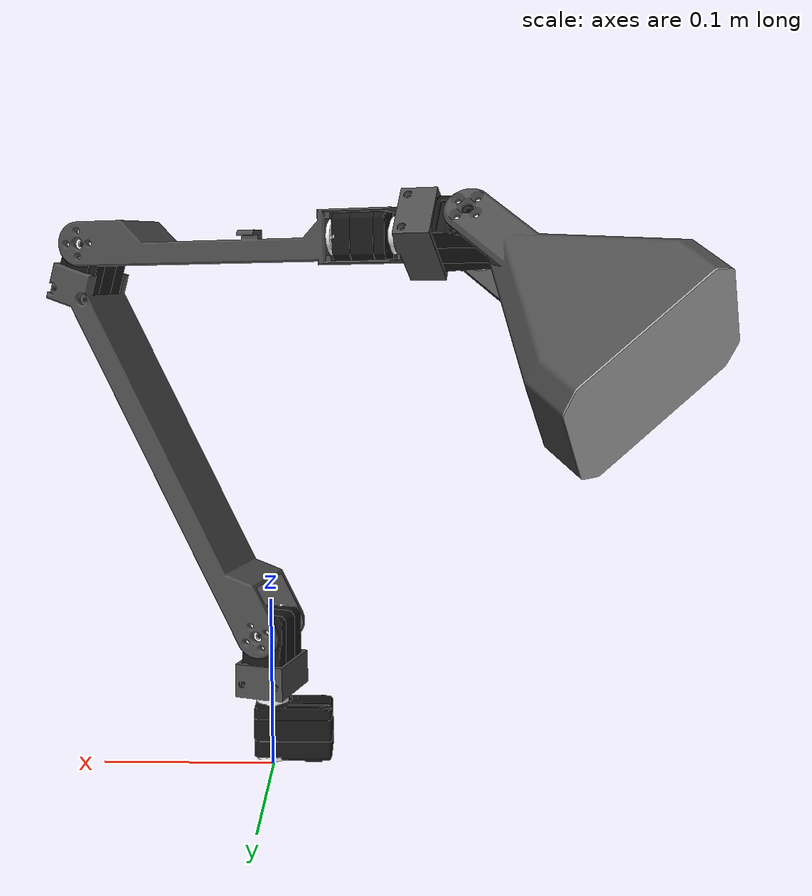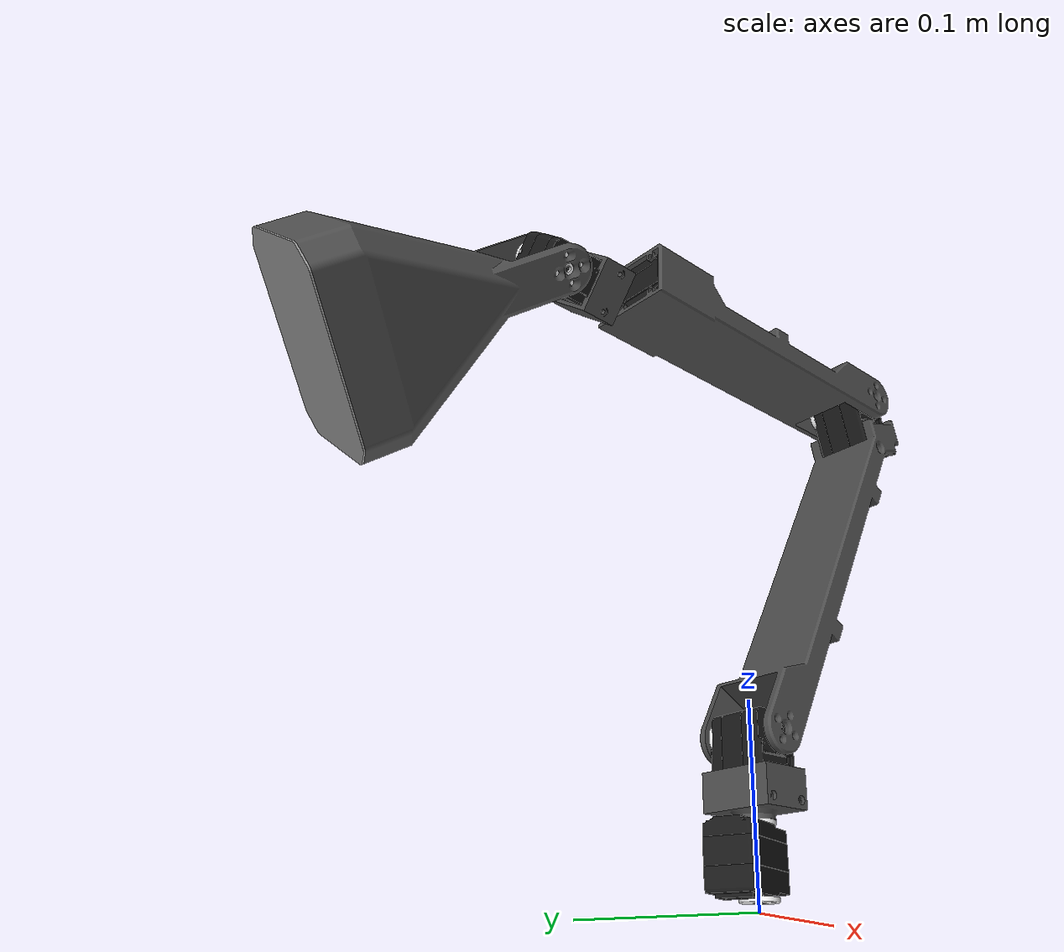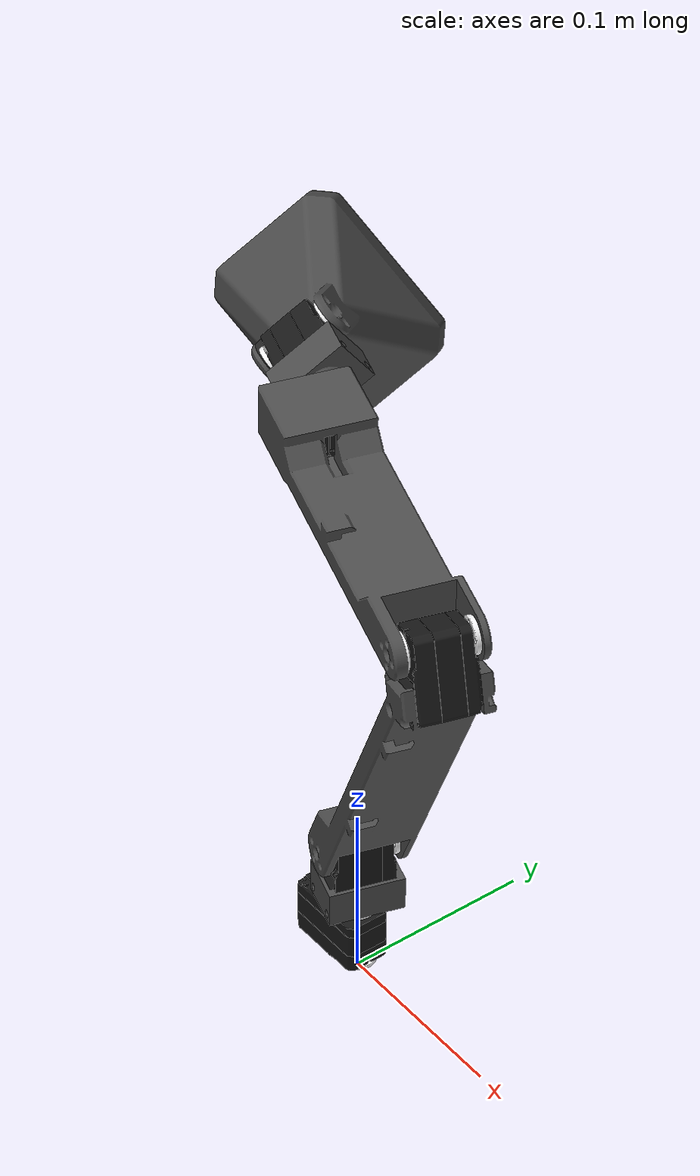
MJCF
<?xml version='1.0' encoding='utf-8'?>
<mujoco model="simulation">
  <compiler angle="radian" meshdir="assets" autolimits="true" />
  <default>
    <default class="simulation">
      <joint frictionloss="0.1" armature="0.005" />
      <position kp="50" dampratio="1" />
      <default class="visual">
        <geom type="mesh" contype="0" conaffinity="0" group="2" />
      </default>
      <default class="collision">
        <geom group="3" />
      </default>
    </default>
  </default>
  <sensor>
    <accelerometer name="accel_sensor" site="imu_site" />
    <gyro name="gyro_sensor" site="imu_site" />
  </sensor>
  <default>
    <default class="sts3215">
      <geom contype="0" conaffinity="0" />
      <joint damping="0.60" frictionloss="0.052" armature="0.028" />
      <position kp="17.8" kv="0.0" forcerange="-3.35 3.35" />
    </default>
    <default class="backlash">
      <joint damping="0.01" frictionloss="0" armature="0.01" limited="true" range="-0.008726646259971648 0.008726646259971648" />
    </default>
  </default>
  <worldbody>
    <body name="lamparm__base_elbow" pos="0 0 0" quat="1 0 0 0" childclass="simulation">
      <freejoint name="lamparm__base_elbow_freejoint" />
      <inertial pos="0.0729066 -0.0229022 0.217607" mass="0.234138" fullinertia="0.0010919 0.00129476 0.000320305 7.35843e-05 -0.000504692 0.000161616" />
      <geom type="mesh" class="visual" pos="0.0683802 0.000449515 0.192601" quat="0.149185 0.238014 -0.0370254 0.959021" mesh="lamparm__base_elbow" material="lamparm__base_elbow_material" />
      <geom type="mesh" class="collision" pos="0.0683802 0.000449515 0.192601" quat="0.149185 0.238014 -0.0370254 0.959021" mesh="lamparm__base_elbow" material="lamparm__base_elbow_material" />
      <geom type="mesh" class="visual" pos="0.0947995 -0.0378086 0.310793" quat="0.794936 0.0912975 0.586898 -0.12366" mesh="金属舵盘_驱动__v2" material="金属舵盘_驱动__v2_material" />
      <geom type="mesh" class="collision" pos="0.0947995 -0.0378086 0.310793" quat="0.794936 0.0912975 0.586898 -0.12366" mesh="金属舵盘_驱动__v2" material="金属舵盘_驱动__v2_material" />
      <geom type="mesh" class="visual" pos="0.090674 -0.0701329 0.29168" quat="0.12366 0.586898 -0.0912975 0.794936" mesh="金属舵盘_从动__v2" material="金属舵盘_从动__v2_material" />
      <geom type="mesh" class="collision" pos="0.090674 -0.0701329 0.29168" quat="0.12366 0.586898 -0.0912975 0.794936" mesh="金属舵盘_从动__v2" material="金属舵盘_从动__v2_material" />
      <geom type="mesh" class="visual" pos="0.110043 -0.0244059 0.276867" quat="0.794936 0.0912975 0.586898 -0.12366" mesh="pcb_chazuo_92" material="pcb_chazuo_92_material" />
      <geom type="mesh" class="collision" pos="0.110043 -0.0244059 0.276867" quat="0.794936 0.0912975 0.586898 -0.12366" mesh="pcb_chazuo_92" material="pcb_chazuo_92_material" />
      <geom type="mesh" class="visual" pos="0.110043 -0.0244059 0.276867" quat="0.794936 0.0912975 0.586898 -0.12366" mesh="xg_ziji_16" material="xg_ziji_16_material" />
      <geom type="mesh" class="collision" pos="0.110043 -0.0244059 0.276867" quat="0.794936 0.0912975 0.586898 -0.12366" mesh="xg_ziji_16" material="xg_ziji_16_material" />
      <geom type="mesh" class="visual" pos="0.101068 -0.0278417 0.301237" quat="0.497548 0.626662 0.327559 -0.50244" mesh="ge_27" material="ge_27_material" />
      <geom type="mesh" class="collision" pos="0.101068 -0.0278417 0.301237" quat="0.497548 0.626662 0.327559 -0.50244" mesh="ge_27" material="ge_27_material" />
      <geom type="mesh" class="visual" pos="0.110043 -0.0244059 0.276867" quat="0.794936 0.0912975 0.586898 -0.12366" mesh="sg_ziji_15" material="sg_ziji_15_material" />
      <geom type="mesh" class="collision" pos="0.110043 -0.0244059 0.276867" quat="0.794936 0.0912975 0.586898 -0.12366" mesh="sg_ziji_15" material="sg_ziji_15_material" />
      <geom type="mesh" class="visual" pos="0.110043 -0.0244059 0.276867" quat="0.794936 0.0912975 0.586898 -0.12366" mesh="zk_122" material="zk_122_material" />
      <geom type="mesh" class="collision" pos="0.110043 -0.0244059 0.276867" quat="0.794936 0.0912975 0.586898 -0.12366" mesh="zk_122" material="zk_122_material" />
      <geom type="mesh" class="visual" pos="0.101964 -0.0458133 0.276499" quat="0.147105 0.151998 0.977104 -0.0228836" mesh="motor_1723_3" material="motor_1723_3_material" />
      <geom type="mesh" class="collision" pos="0.101964 -0.0458133 0.276499" quat="0.147105 0.151998 0.977104 -0.0228836" mesh="motor_1723_3" material="motor_1723_3_material" />
      <body name="lamparm__wrist_head" pos="0.00583234 0.0182927 0.08291" quat="0.570913 -0.417203 0.570913 0.417203">
        <joint axis="0 0 1" name="2" type="hinge" range="-1.0842575396713956 2.0573351139183975" class="sts3215" />
        <inertial pos="0.0193636 0.000541554 -0.0196637" mass="0.0953804" fullinertia="1.16713e-05 2.19256e-05 1.7794e-05 -3.19269e-07 9.361e-07 6.98105e-08" />
        <geom type="mesh" class="visual" pos="0.04111 7.30741e-16 -0.0192" quat="0.5 -0.5 -0.5 0.5" mesh="lamparm__wrist_head" material="lamparm__wrist_head_material" />
        <geom type="mesh" class="collision" pos="0.04111 7.30741e-16 -0.0192" quat="0.5 -0.5 -0.5 0.5" mesh="lamparm__wrist_head" material="lamparm__wrist_head_material" />
        <geom type="mesh" class="visual" pos="-0.01 1.67203e-18 -0.027" quat="0.707107 0.707107 0 -5.47763e-32" mesh="金属舵盘_驱动__v2" material="金属舵盘_驱动__v2_material" />
        <geom type="mesh" class="collision" pos="-0.01 1.67203e-18 -0.027" quat="0.707107 0.707107 0 -5.47763e-32" mesh="金属舵盘_驱动__v2" material="金属舵盘_驱动__v2_material" />
        <geom type="mesh" class="visual" pos="0.01 -7.90727e-16 -0.05905" quat="9.30303e-15 -3.53884e-15 0.707107 -0.707107" mesh="金属舵盘_从动__v2" material="金属舵盘_从动__v2_material" />
        <geom type="mesh" class="collision" pos="0.01 -7.90727e-16 -0.05905" quat="9.30303e-15 -3.53884e-15 0.707107 -0.707107" mesh="金属舵盘_从动__v2" material="金属舵盘_从动__v2_material" />
        <geom type="mesh" class="visual" pos="0.0255 6.87024e-16 -0.0096" quat="0.707107 0.707107 0 -5.47763e-32" mesh="pcb_chazuo_92" material="pcb_chazuo_92_material" />
        <geom type="mesh" class="collision" pos="0.0255 6.87024e-16 -0.0096" quat="0.707107 0.707107 0 -5.47763e-32" mesh="pcb_chazuo_92" material="pcb_chazuo_92_material" />
        <geom type="mesh" class="visual" pos="0.0255 6.87024e-16 -0.0096" quat="0.707107 0.707107 0 -5.47763e-32" mesh="xg_ziji_16" material="xg_ziji_16_material" />
        <geom type="mesh" class="collision" pos="0.0255 6.87024e-16 -0.0096" quat="0.707107 0.707107 0 -5.47763e-32" mesh="xg_ziji_16" material="xg_ziji_16_material" />
        <geom type="mesh" class="visual" pos="-1.80411e-16 3.21139e-16 -0.0156" quat="1.6825e-14 1 2.44606e-15 3.23662e-16" mesh="ge_27" material="ge_27_material" />
        <geom type="mesh" class="collision" pos="-1.80411e-16 3.21139e-16 -0.0156" quat="1.6825e-14 1 2.44606e-15 3.23662e-16" mesh="ge_27" material="ge_27_material" />
        <geom type="mesh" class="visual" pos="0.0255 6.87024e-16 -0.0096" quat="0.707107 0.707107 0 -5.47763e-32" mesh="sg_ziji_15" material="sg_ziji_15_material" />
        <geom type="mesh" class="collision" pos="0.0255 6.87024e-16 -0.0096" quat="0.707107 0.707107 0 -5.47763e-32" mesh="sg_ziji_15" material="sg_ziji_15_material" />
        <geom type="mesh" class="visual" pos="0.0255 6.87024e-16 -0.0096" quat="0.707107 0.707107 0 -5.47763e-32" mesh="zk_122" material="zk_122_material" />
        <geom type="mesh" class="collision" pos="0.0255 6.87024e-16 -0.0096" quat="0.707107 0.707107 0 -5.47763e-32" mesh="zk_122" material="zk_122_material" />
        <geom type="mesh" class="visual" pos="0.0255 0.00125 -0.03245" quat="0.5 0.5 0.5 0.5" mesh="motor_1723_3" material="motor_1723_3_material" />
        <geom type="mesh" class="collision" pos="0.0255 0.00125 -0.03245" quat="0.5 0.5 0.5 0.5" mesh="motor_1723_3" material="motor_1723_3_material" />
        <body name="scs215_v5" pos="0.04111 7.30741e-16 -0.0192" quat="0.5 -0.5 -0.5 0.5">
          <joint axis="0 0 1" name="1" type="hinge" range="-5.021033992714066 1.2621513144655205" class="sts3215" />
          <inertial pos="0.00584437 0.00206639 -0.0244202" mass="0.41735" fullinertia="0.00100304 0.00122902 0.00205034 -8.49257e-05 -8.64397e-06 -3.34823e-06" />
          <geom type="mesh" class="visual" pos="-0.00952746 -0.00303768 -0.027" quat="0.698703 0.698703 0.10869 0.10869" mesh="金属舵盘_驱动__v2" material="金属舵盘_驱动__v2_material" />
          <geom type="mesh" class="collision" pos="-0.00952746 -0.00303768 -0.027" quat="0.698703 0.698703 0.10869 0.10869" mesh="金属舵盘_驱动__v2" material="金属舵盘_驱动__v2_material" />
          <geom type="mesh" class="visual" pos="0.00952746 0.00303768 -0.05905" quat="0.10869 -0.10869 0.698703 -0.698703" mesh="金属舵盘_从动__v2" material="金属舵盘_从动__v2_material" />
          <geom type="mesh" class="collision" pos="0.00952746 0.00303768 -0.05905" quat="0.10869 -0.10869 0.698703 -0.698703" mesh="金属舵盘_从动__v2" material="金属舵盘_从动__v2_material" />
          <geom type="mesh" class="visual" pos="0.024295 0.00774608 -0.0096" quat="0.698703 0.698703 0.10869 0.10869" mesh="pcb_chazuo_92" material="pcb_chazuo_92_material" />
          <geom type="mesh" class="collision" pos="0.024295 0.00774608 -0.0096" quat="0.698703 0.698703 0.10869 0.10869" mesh="pcb_chazuo_92" material="pcb_chazuo_92_material" />
          <geom type="mesh" class="visual" pos="0.024295 0.00774608 -0.0096" quat="0.698703 0.698703 0.10869 0.10869" mesh="xg_ziji_16" material="xg_ziji_16_material" />
          <geom type="mesh" class="collision" pos="0.024295 0.00774608 -0.0096" quat="0.698703 0.698703 0.10869 0.10869" mesh="xg_ziji_16" material="xg_ziji_16_material" />
          <geom type="mesh" class="visual" pos="-1.19702e-17 3.78772e-17 -0.0156" quat="1.59242e-15 -0.988116 -0.153711 1.25707e-15" mesh="ge_27" material="ge_27_material" />
          <geom type="mesh" class="collision" pos="-1.19702e-17 3.78772e-17 -0.0156" quat="1.59242e-15 -0.988116 -0.153711 1.25707e-15" mesh="ge_27" material="ge_27_material" />
          <geom type="mesh" class="visual" pos="0.024295 0.00774608 -0.0096" quat="0.698703 0.698703 0.10869 0.10869" mesh="sg_ziji_15" material="sg_ziji_15_material" />
          <geom type="mesh" class="collision" pos="0.024295 0.00774608 -0.0096" quat="0.698703 0.698703 0.10869 0.10869" mesh="sg_ziji_15" material="sg_ziji_15_material" />
          <geom type="mesh" class="visual" pos="0.024295 0.00774608 -0.0096" quat="0.698703 0.698703 0.10869 0.10869" mesh="zk_122" material="zk_122_material" />
          <geom type="mesh" class="collision" pos="0.024295 0.00774608 -0.0096" quat="0.698703 0.698703 0.10869 0.10869" mesh="zk_122" material="zk_122_material" />
          <geom type="mesh" class="visual" pos="0.0239153 0.00893702 -0.03245" quat="0.417203 0.417203 0.570913 0.570913" mesh="motor_1723_3" material="motor_1723_3_material" />
          <geom type="mesh" class="collision" pos="0.0239153 0.00893702 -0.03245" quat="0.417203 0.417203 0.570913 0.570913" mesh="motor_1723_3" material="motor_1723_3_material" />
          <site group="3" name="imu_site" pos="-3.4944e-17 4.02192e-17 -0.0378" quat="1.81174e-15 -0.590014 -0.807393 -2.8812e-15" />
        </body>
      </body>
      <body name="lamparm__elbow_wrist" pos="0.105806 -0.0129789 0.301237" quat="0.575614 0.423658 -0.566139 0.410693">
        <joint axis="0 0 1" name="3" type="hinge" range="-2.820024081304335 0.3215685722854582" class="sts3215" />
        <inertial pos="-0.00212937 0.119295 0.0220282" mass="0.206448" fullinertia="0.000632713 4.80236e-05 0.000602863 -1.84707e-05 -1.72868e-06 -1.49987e-05" />
        <geom type="mesh" class="visual" pos="-0.00618 0.08736 0.03925" quat="0.707107 -0.707107 0 -1.89876e-18" mesh="lamparm__elbow_wrist" material="lamparm__elbow_wrist_material" />
        <geom type="mesh" class="collision" pos="-0.00618 0.08736 0.03925" quat="0.707107 -0.707107 0 -1.89876e-18" mesh="lamparm__elbow_wrist" material="lamparm__elbow_wrist_material" />
        <geom type="mesh" class="visual" pos="2.60902e-15 0.158185 -0.003875" quat="0.707107 -0 -0.707107 -1.10011e-16" mesh="金属舵盘_驱动__v2" material="金属舵盘_驱动__v2_material" />
        <geom type="mesh" class="collision" pos="2.60902e-15 0.158185 -0.003875" quat="0.707107 -0 -0.707107 -1.10011e-16" mesh="金属舵盘_驱动__v2" material="金属舵盘_驱动__v2_material" />
        <geom type="mesh" class="visual" pos="3.4972e-15 0.126135 0.016125" quat="1.77931e-14 0.707107 2.09832e-14 -0.707107" mesh="金属舵盘_从动__v2" material="金属舵盘_从动__v2_material" />
        <geom type="mesh" class="collision" pos="3.4972e-15 0.126135 0.016125" quat="1.77931e-14 0.707107 2.09832e-14 -0.707107" mesh="金属舵盘_从动__v2" material="金属舵盘_从动__v2_material" />
        <geom type="mesh" class="visual" pos="5.55112e-17 0.175585 0.031625" quat="0.707107 -0 -0.707107 -1.10011e-16" mesh="pcb_chazuo_92" material="pcb_chazuo_92_material" />
        <geom type="mesh" class="collision" pos="5.55112e-17 0.175585 0.031625" quat="0.707107 -0 -0.707107 -1.10011e-16" mesh="pcb_chazuo_92" material="pcb_chazuo_92_material" />
        <geom type="mesh" class="visual" pos="5.55112e-17 0.175585 0.031625" quat="0.707107 -0 -0.707107 -1.10011e-16" mesh="xg_ziji_16" material="xg_ziji_16_material" />
        <geom type="mesh" class="collision" pos="5.55112e-17 0.175585 0.031625" quat="0.707107 -0 -0.707107 -1.10011e-16" mesh="xg_ziji_16" material="xg_ziji_16_material" />
        <geom type="mesh" class="visual" pos="3.88578e-16 0.169585 0.006125" quat="0.5 0.5 -0.5 0.5" mesh="ge_27" material="ge_27_material" />
        <geom type="mesh" class="collision" pos="3.88578e-16 0.169585 0.006125" quat="0.5 0.5 -0.5 0.5" mesh="ge_27" material="ge_27_material" />
        <geom type="mesh" class="visual" pos="5.55112e-17 0.175585 0.031625" quat="0.707107 -0 -0.707107 -1.10011e-16" mesh="sg_ziji_15" material="sg_ziji_15_material" />
        <geom type="mesh" class="collision" pos="5.55112e-17 0.175585 0.031625" quat="0.707107 -0 -0.707107 -1.10011e-16" mesh="sg_ziji_15" material="sg_ziji_15_material" />
        <geom type="mesh" class="visual" pos="5.55112e-17 0.175585 0.031625" quat="0.707107 -0 -0.707107 -1.10011e-16" mesh="zk_122" material="zk_122_material" />
        <geom type="mesh" class="collision" pos="5.55112e-17 0.175585 0.031625" quat="0.707107 -0 -0.707107 -1.10011e-16" mesh="zk_122" material="zk_122_material" />
        <geom type="mesh" class="visual" pos="0.00125 0.152735 0.031625" quat="1 -8.11122e-15 -1.31006e-14 1.43659e-14" mesh="motor_1723_3" material="motor_1723_3_material" />
        <geom type="mesh" class="collision" pos="0.00125 0.152735 0.031625" quat="1 -8.11122e-15 -1.31006e-14 1.43659e-14" mesh="motor_1723_3" material="motor_1723_3_material" />
        <body name="lamparm__wrist_head_2" pos="2.55351e-15 0.185185 0.006125" quat="0.670659 0.670659 -0.224092 0.224092">
          <joint axis="0 0 1" name="4" type="hinge" range="-3.7865399953934267 2.4966453117861596" class="sts3215" />
          <inertial pos="0.000541554 -0.000463734 -0.0217464" mass="0.0953804" fullinertia="2.19256e-05 1.7794e-05 1.16713e-05 6.98105e-08 -3.19269e-07 9.361e-07" />
          <geom type="mesh" class="visual" pos="0 -2.77556e-17 -1.38778e-17" quat="0 1 0 0" mesh="lamparm__wrist_head" material="lamparm__wrist_head_material" />
          <geom type="mesh" class="collision" pos="0 -2.77556e-17 -1.38778e-17" quat="0 1 0 0" mesh="lamparm__wrist_head" material="lamparm__wrist_head_material" />
          <geom type="mesh" class="visual" pos="1.60982e-15 -0.0078 -0.05111" quat="0.707107 1.0961e-15 -0.707107 -8.93328e-16" mesh="金属舵盘_驱动__v2" material="金属舵盘_驱动__v2_material" />
          <geom type="mesh" class="collision" pos="1.60982e-15 -0.0078 -0.05111" quat="0.707107 1.0961e-15 -0.707107 -8.93328e-16" mesh="金属舵盘_驱动__v2" material="金属舵盘_驱动__v2_material" />
          <geom type="mesh" class="visual" pos="3.88578e-16 -0.03985 -0.03111" quat="2.56969e-15 0.707107 -7.77156e-16 -0.707107" mesh="金属舵盘_从动__v2" material="金属舵盘_从动__v2_material" />
          <geom type="mesh" class="collision" pos="3.88578e-16 -0.03985 -0.03111" quat="2.56969e-15 0.707107 -7.77156e-16 -0.707107" mesh="金属舵盘_从动__v2" material="金属舵盘_从动__v2_material" />
          <geom type="mesh" class="visual" pos="1.94289e-16 0.0096 -0.01561" quat="0.707107 1.0961e-15 -0.707107 -8.93328e-16" mesh="pcb_chazuo_92" material="pcb_chazuo_92_material" />
          <geom type="mesh" class="collision" pos="1.94289e-16 0.0096 -0.01561" quat="0.707107 1.0961e-15 -0.707107 -8.93328e-16" mesh="pcb_chazuo_92" material="pcb_chazuo_92_material" />
          <geom type="mesh" class="visual" pos="1.94289e-16 0.0096 -0.01561" quat="0.707107 1.0961e-15 -0.707107 -8.93328e-16" mesh="xg_ziji_16" material="xg_ziji_16_material" />
          <geom type="mesh" class="collision" pos="1.94289e-16 0.0096 -0.01561" quat="0.707107 1.0961e-15 -0.707107 -8.93328e-16" mesh="xg_ziji_16" material="xg_ziji_16_material" />
          <geom type="mesh" class="visual" pos="8.32667e-17 0.0036 -0.04111" quat="0.5 0.5 -0.5 0.5" mesh="ge_27" material="ge_27_material" />
          <geom type="mesh" class="collision" pos="8.32667e-17 0.0036 -0.04111" quat="0.5 0.5 -0.5 0.5" mesh="ge_27" material="ge_27_material" />
          <geom type="mesh" class="visual" pos="1.94289e-16 0.0096 -0.01561" quat="0.707107 1.0961e-15 -0.707107 -8.93328e-16" mesh="sg_ziji_15" material="sg_ziji_15_material" />
          <geom type="mesh" class="collision" pos="1.94289e-16 0.0096 -0.01561" quat="0.707107 1.0961e-15 -0.707107 -8.93328e-16" mesh="sg_ziji_15" material="sg_ziji_15_material" />
          <geom type="mesh" class="visual" pos="1.94289e-16 0.0096 -0.01561" quat="0.707107 1.0961e-15 -0.707107 -8.93328e-16" mesh="zk_122" material="zk_122_material" />
          <geom type="mesh" class="collision" pos="1.94289e-16 0.0096 -0.01561" quat="0.707107 1.0961e-15 -0.707107 -8.93328e-16" mesh="zk_122" material="zk_122_material" />
          <geom type="mesh" class="visual" pos="0.00125 -0.01325 -0.01561" quat="1 1.45952e-14 2.05391e-14 2.58019e-14" mesh="motor_1723_3" material="motor_1723_3_material" />
          <geom type="mesh" class="collision" pos="0.00125 -0.01325 -0.01561" quat="1 1.45952e-14 2.05391e-14 2.58019e-14" mesh="motor_1723_3" material="motor_1723_3_material" />
          <body name="diffuser" pos="1.58207e-15 0.0192 -0.04111" quat="0.5 0.5 -0.5 0.5">
            <joint axis="0 0 1" name="5" type="hinge" range="-0.8533371981959901 2.288255455393803" class="sts3215" />
            <inertial pos="-0.0641891 0.0560099 0.0186249" mass="0.0933113" fullinertia="0.000164418 0.000170062 0.000206169 2.06383e-05 7.21792e-11 4.01082e-10" />
            <geom type="mesh" class="visual" pos="-0.0018837 0.00164368 0.03925" quat="0.643714 0.643714 0.292629 0.292629" mesh="diffuser" material="diffuser_material" />
            <geom type="mesh" class="collision" pos="-0.0018837 0.00164368 0.03925" quat="0.643714 0.643714 0.292629 0.292629" mesh="diffuser" material="diffuser_material" />
            <geom type="mesh" class="visual" pos="-0.0018837 0.00164368 0.03925" quat="0.643714 0.643714 0.292629 0.292629" mesh="lamphead" material="lamphead_material" />
            <geom type="mesh" class="collision" pos="-0.0018837 0.00164368 0.03925" quat="0.643714 0.643714 0.292629 0.292629" mesh="lamphead" material="lamphead_material" />
          </body>
        </body>
      </body>
    </body>
  </worldbody>
  <asset>
    <mesh file="xg_ziji_16.stl" />
    <mesh file="ge_27.stl" />
    <mesh file="金属舵盘_驱动__v2.stl" />
    <mesh file="金属舵盘_从动__v2.stl" />
    <mesh file="lamp_base_cover.stl" />
    <mesh file="lamp_base.stl" />
    <mesh file="lamparm__elbow_wrist.stl" />
    <mesh file="lamparm__base_elbow.stl" />
    <mesh file="diffuser.stl" />
    <mesh file="sg_ziji_15.stl" />
    <mesh file="lamparm__wrist_head.stl" />
    <mesh file="lamphead.stl" />
    <mesh file="motor_1723_3.stl" />
    <mesh file="pcb_chazuo_92.stl" />
    <mesh file="zk_122.stl" />
    <material name="lamparm__base_elbow_material" rgba="0.301961 0.301961 0.301961 1" />
    <material name="金属舵盘_驱动__v2_material" rgba="0.960784 0.960784 0.964706 1" />
    <material name="金属舵盘_从动__v2_material" rgba="0.960784 0.960784 0.964706 1" />
    <material name="pcb_chazuo_92_material" rgba="0.0980392 0.0980392 0.0980392 1" />
    <material name="xg_ziji_16_material" rgba="0.0980392 0.0980392 0.0980392 1" />
    <material name="ge_27_material" rgba="0.0980392 0.0980392 0.0980392 1" />
    <material name="sg_ziji_15_material" rgba="0.0980392 0.0980392 0.0980392 1" />
    <material name="zk_122_material" rgba="0.0980392 0.0980392 0.0980392 1" />
    <material name="motor_1723_3_material" rgba="0.0980392 0.0980392 0.0980392 1" />
    <material name="lamparm__wrist_head_material" rgba="0.301961 0.301961 0.301961 1" />
    <material name="lamp_base_material" rgba="0.301961 0.301961 0.301961 1" />
    <material name="lamp_base_cover_material" rgba="0.231373 0.380392 0.705882 1" />
    <material name="lamparm__elbow_wrist_material" rgba="0.301961 0.301961 0.301961 1" />
    <material name="diffuser_material" rgba="0.647059 0.647059 0.647059 1" />
    <material name="lamphead_material" rgba="0.301961 0.301961 0.301961 1" />
  </asset>
  <actuator>
    <position class="sts3215" name="2" joint="2" inheritrange="1" />
    <position class="sts3215" name="1" joint="1" inheritrange="1" />
    <position class="sts3215" name="3" joint="3" inheritrange="1" />
    <position class="sts3215" name="4" joint="4" inheritrange="1" />
    <position class="sts3215" name="5" joint="5" inheritrange="1" />
  </actuator>
  <equality />
  <keyframe>
    <key name="curious_start" qpos="0 0 0 1 0 0 0 -0.50547 0.00339228 0.321569 0.0355499 0.434574 0 -1.5" />
    <key name="curious_peak" qpos="0 0 0 1 0 0 0 -0.515423 -0.33414 0.321569 1.17484 0.445825 0 -1.5" />
    <key name="curious_end" qpos="0 0 0 1 0 0 0 -0.515423 0.169614 0.321569 0.0727926 0.433168 0 -1.5" />
    <key name="excited_start" qpos="0 0 0 1 0 0 0 -0.58936 0.0695418 0.321569 0.0643283 0.954938 0 -1.5" />
    <key name="excited_peak" qpos="0 0 0 1 0 0 0 -0.495517 0.0729341 0.321569 0.0761783 1.05198 0 -1.5" />
    <key name="excited_end" qpos="0 0 0 1 0 0 0 -0.96473 0.0576688 0.321569 0.0710997 0.462702 0 -1.5" />
    <key name="happy_wiggle_start" qpos="0 0 0 1 0 0 0 -1.08426 0.011873 0.321569 -0.0287785 0.368474 0 -1.5" />
    <key name="happy_wiggle_peak" qpos="0 0 0 1 0 0 0 -1.08426 0.035619 0.321569 -0.269163 0.293935 0 -1.5" />
    <key name="happy_wiggle_end" qpos="0 0 0 1 0 0 0 -1.08426 -0.0407074 0.321569 -0.230228 0.298155 0 -1.5" />
    <key name="headshake_start" qpos="0 0 0 1 0 0 0 -0.504048 0.130603 0.321569 -0.0558641 0.212365 0 -1.5" />
    <key name="headshake_peak" qpos="0 0 0 1 0 0 0 -0.509736 -0.0678456 0.321569 -0.367349 0.199707 0 -1.5" />
    <key name="headshake_end" qpos="0 0 0 1 0 0 0 -0.516845 -0.00508842 0.321569 -0.497698 0.199707 0 -1.5" />
    <key name="idle_start" qpos="0 0 0 1 0 0 0 -0.779888 0.507146 0.321569 0.0947996 0.0534428 0 -1.5" />
    <key name="idle_peak" qpos="0 0 0 1 0 0 0 -0.775623 0.569903 0.321569 -0.321642 0.0182831 0 -1.5" />
    <key name="idle_end" qpos="0 0 0 1 0 0 0 -0.740076 0.127211 0.321569 0.231921 0.274246 0 -1.5" />
    <key name="nod_start" qpos="0 0 0 1 0 0 0 -0.458549 0.0915916 0.321569 -0.0067714 0.25315 0 -1.5" />
    <key name="nod_peak" qpos="0 0 0 1 0 0 0 -0.40594 0.106857 0.321569 -0.120192 0.362848 0 -1.5" />
    <key name="nod_end" qpos="0 0 0 1 0 0 0 -0.415893 0.106857 0.321569 -0.138814 0.403634 0 -1.5" />
    <key name="sad_start" qpos="0 0 0 1 0 0 0 -0.795529 0.0661495 0.321569 0.0575569 0.390976 0 -1.5" />
    <key name="sad_peak" qpos="0 0 0 1 0 0 0 -0.690311 0.0576688 0.321569 0.0727926 1.18981 0 -1.5" />
    <key name="sad_end" qpos="0 0 0 1 0 0 0 -0.693155 0.0610611 0.321569 0.0727926 1.11949 0 -1.5" />
    <key name="scanning_start" qpos="0 0 0 1 0 0 0 -0.701686 -0.0254421 0.321569 -0.0220071 0.45567 0 -1.5" />
    <key name="scanning_peak" qpos="0 0 0 1 0 0 0 -0.622062 -0.291736 0.321569 -0.0253928 0.441606 0 -1.5" />
    <key name="scanning_end" qpos="0 0 0 1 0 0 0 -0.622062 0.173006 0.321569 -0.0236999 0.443013 0 -1.5" />
    <key name="shock_start" qpos="0 0 0 1 0 0 0 -0.744342 0.035619 0.321569 0.160821 0.082977 0 -1.5" />
    <key name="shock_peak" qpos="0 0 0 1 0 0 0 -0.653343 0.122122 0.321569 0.160821 -0.123762 0 -1.5" />
    <key name="shock_end" qpos="0 0 0 1 0 0 0 -0.656187 0.123818 0.321569 0.160821 -0.00703195 0 -1.5" />
    <key name="shy_start" qpos="0 0 0 1 0 0 0 -0.809747 0.0322267 0.321569 0.128657 0.284091 0 -1.5" />
    <key name="shy_peak" qpos="0 0 0 1 0 0 0 -0.805482 0.943054 0.321569 0.231921 0.353004 0 -1.5" />
    <key name="shy_end" qpos="0 0 0 1 0 0 0 -0.744342 0.00508842 0.321569 -0.108342 0.423323 0 -1.5" />
    <key name="wake_up_start" qpos="0 0 0 1 0 0 0 -0.895059 0.206929 0.321569 0.0253928 1.21512 0 -1.5" />
    <key name="wake_up_peak" qpos="0 0 0 1 0 0 0 -1.05573 0.456262 0.321569 -0.616198 0.644126 0 -1.5" />
    <key name="wake_up_end" qpos="0 0 0 1 0 0 0 -0.806904 -0.0390112 0.321569 0.0981854 0.652565 0 -1.5" />
  </keyframe>
</mujoco>
